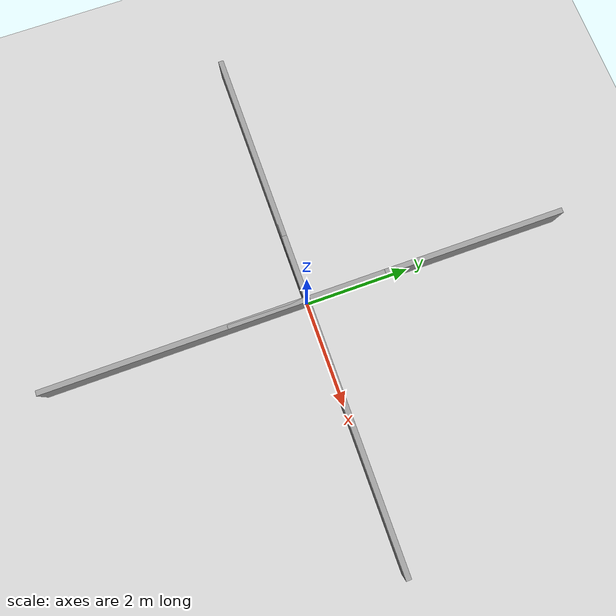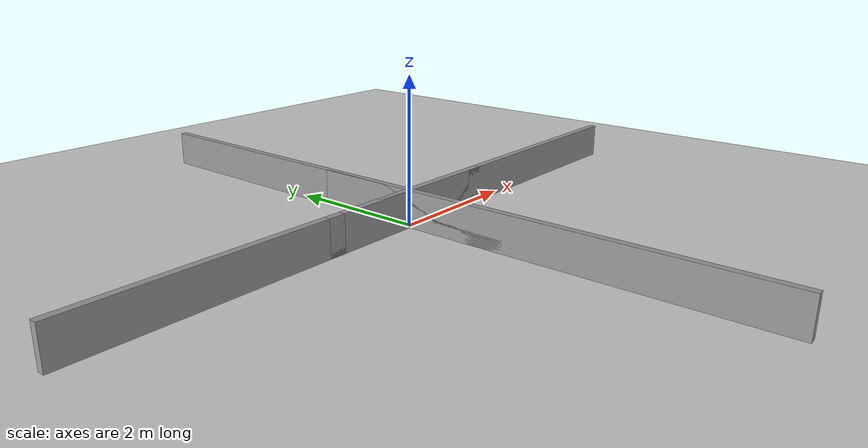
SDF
<sdf version="1.7">
 <world name="default">
  <light name="sun" type="directional">
   <cast_shadows>0</cast_shadows>
   <pose>0 0 10 0 -0 0</pose>
   <diffuse>0.8 0.8 0.8 1</diffuse>
   <specular>0.2 0.2 0.2 1</specular>
   <attenuation>
    <range>1000</range>
    <constant>0.9</constant>
    <linear>0.01</linear>
    <quadratic>0.001</quadratic>
   </attenuation>
   <direction>-0.5 0.1 -0.9</direction>
   <spot><inner_angle>0</inner_angle><outer_angle>0</outer_angle><falloff>0</falloff></spot>
  </light>
  <model name="ground_plane">
   <static>1</static>
   <link name="link">
    <collision name="collision">
     <geometry><plane><normal>0 0 1</normal><size>100 100</size></plane></geometry>
     <surface>
      <contact><collide_bitmask>65535</collide_bitmask></contact>
      <friction><ode><mu>100</mu><mu2>50</mu2></ode></friction>
     </surface>
    </collision>
    <visual name="visual">
     <cast_shadows>0</cast_shadows>
     <geometry><plane><normal>0 0 1</normal><size>100 100</size></plane></geometry>
     <material>
      <script><uri>file://media/materials/scripts/gazebo.material</uri><name>Gazebo/Grey</name></script>
     </material>
    </visual>
   </link>
  </model>
  <gravity>0 0 -9.8</gravity>
  <magnetic_field>6e-06 2.3e-05 -4.2e-05</magnetic_field>
  <atmosphere type="adiabatic"/>
  <physics type="ode">
   <max_step_size>0.001</max_step_size>
   <real_time_factor>1</real_time_factor>
   <real_time_update_rate>250</real_time_update_rate>
  </physics>
  <scene><ambient>0.4 0.4 0.4 1</ambient><background>0.7 0.7 0.7 1</background><shadows>0</shadows></scene>
  <spherical_coordinates>
   <surface_model>EARTH_WGS84</surface_model>
   <latitude_deg>0</latitude_deg>
   <longitude_deg>0</longitude_deg>
   <elevation>0</elevation>
   <heading_deg>0</heading_deg>
  </spherical_coordinates>
  <model name="walls">
   <static>1</static>
   <link name="border_bottom">
    <inertial>
     <mass>1</mass>
     <inertia>
      <ixx>0.166667</ixx>
      <ixy>0</ixy>
      <ixz>0</ixz>
      <iyy>0.166667</iyy>
      <iyz>0</iyz>
      <izz>0.166667</izz>
     </inertia>
     <pose>0 -5 0.5 0 -0 0</pose>
    </inertial>
    <collision name="collision"><geometry><box><size>10 0.1 1</size></box></geometry></collision>
    <visual name="visual">
     <geometry><box><size>10 0.1 1</size></box></geometry>
     <material>
      <script><name>Gazebo/Grey</name><uri>file://media/materials/scripts/gazebo.material</uri></script>
     </material>
    </visual>
   </link>
   <link name="border_left">
    <inertial>
     <mass>1</mass>
     <inertia>
      <ixx>0.166667</ixx>
      <ixy>0</ixy>
      <ixz>0</ixz>
      <iyy>0.166667</iyy>
      <iyz>0</iyz>
      <izz>0.166667</izz>
     </inertia>
     <pose>-5 0 0.5 0 -0 0</pose>
    </inertial>
    <collision name="collision"><geometry><box><size>0.1 10 1</size></box></geometry></collision>
    <visual name="visual">
     <geometry><box><size>0.1 10 1</size></box></geometry>
     <material>
      <script><name>Gazebo/Grey</name><uri>file://media/materials/scripts/gazebo.material</uri></script>
     </material>
    </visual>
   </link>
   <link name="border_right">
    <inertial>
     <mass>1</mass>
     <inertia>
      <ixx>0.166667</ixx>
      <ixy>0</ixy>
      <ixz>0</ixz>
      <iyy>0.166667</iyy>
      <iyz>0</iyz>
      <izz>0.166667</izz>
     </inertia>
     <pose>5 0 0.5 0 -0 0</pose>
    </inertial>
    <collision name="collision"><geometry><box><size>0.1 10 1</size></box></geometry></collision>
    <visual name="visual">
     <geometry><box><size>0.1 10 1</size></box></geometry>
     <material>
      <script><name>Gazebo/Grey</name><uri>file://media/materials/scripts/gazebo.material</uri></script>
     </material>
    </visual>
   </link>
   <link name="border_top">
    <inertial>
     <mass>1</mass>
     <inertia>
      <ixx>0.166667</ixx>
      <ixy>0</ixy>
      <ixz>0</ixz>
      <iyy>0.166667</iyy>
      <iyz>0</iyz>
      <izz>0.166667</izz>
     </inertia>
     <pose>0 5 0.5 0 -0 0</pose>
    </inertial>
    <collision name="collision"><geometry><box><size>10 0.1 1</size></box></geometry></collision>
    <visual name="visual">
     <geometry><box><size>10 0.1 1</size></box></geometry>
     <material>
      <script><name>Gazebo/Grey</name><uri>file://media/materials/scripts/gazebo.material</uri></script>
     </material>
    </visual>
   </link>
   <link name="wall_01">
    <inertial>
     <mass>1</mass>
     <inertia>
      <ixx>0.166667</ixx>
      <ixy>0</ixy>
      <ixz>0</ixz>
      <iyy>0.166667</iyy>
      <iyz>0</iyz>
      <izz>0.166667</izz>
     </inertia>
     <pose>1 3.5 0.5 0 -0 0</pose>
    </inertial>
    <collision name="collision"><geometry><box><size>0.1 3 1</size></box></geometry></collision>
    <visual name="visual">
     <geometry><box><size>0.1 3 1</size></box></geometry>
     <material>
      <script><name>Gazebo/Grey</name><uri>file://media/materials/scripts/gazebo.material</uri></script>
     </material>
    </visual>
   </link>
   <link name="wall_02">
    <inertial>
     <mass>1</mass>
     <inertia>
      <ixx>0.166667</ixx>
      <ixy>0</ixy>
      <ixz>0</ixz>
      <iyy>0.166667</iyy>
      <iyz>0</iyz>
      <izz>0.166667</izz>
     </inertia>
     <pose>3.75 2 0.5 0 -0 0</pose>
    </inertial>
    <collision name="collision"><geometry><box><size>2.5 0.1 1</size></box></geometry></collision>
    <visual name="visual">
     <geometry><box><size>2.5 0.1 1</size></box></geometry>
     <material>
      <script><name>Gazebo/Grey</name><uri>file://media/materials/scripts/gazebo.material</uri></script>
     </material>
    </visual>
   </link>
   <link name="wall_03">
    <inertial>
     <mass>1</mass>
     <inertia>
      <ixx>0.166667</ixx>
      <ixy>0</ixy>
      <ixz>0</ixz>
      <iyy>0.166667</iyy>
      <iyz>0</iyz>
      <izz>0.166667</izz>
     </inertia>
     <pose>0.5 -2 0.5 0 -0 0</pose>
    </inertial>
    <collision name="collision"><geometry><box><size>3 0.1 1</size></box></geometry></collision>
    <visual name="visual">
     <geometry><box><size>3 0.1 1</size></box></geometry>
     <material>
      <script><name>Gazebo/Grey</name><uri>file://media/materials/scripts/gazebo.material</uri></script>
     </material>
    </visual>
   </link>
   <link name="wall_04">
    <inertial>
     <mass>1</mass>
     <inertia>
      <ixx>0.166667</ixx>
      <ixy>0</ixy>
      <ixz>0</ixz>
      <iyy>0.166667</iyy>
      <iyz>0</iyz>
      <izz>0.166667</izz>
     </inertia>
     <pose>-2 1 0.5 0 -0 0</pose>
    </inertial>
    <collision name="collision"><geometry><box><size>4 0.1 1</size></box></geometry></collision>
    <visual name="visual">
     <geometry><box><size>4 0.1 1</size></box></geometry>
     <material>
      <script><name>Gazebo/Grey</name><uri>file://media/materials/scripts/gazebo.material</uri></script>
     </material>
    </visual>
   </link>
   <link name="wall_05">
    <inertial>
     <mass>1</mass>
     <inertia>
      <ixx>0.166667</ixx>
      <ixy>0</ixy>
      <ixz>0</ixz>
      <iyy>0.166667</iyy>
      <iyz>0</iyz>
      <izz>0.166667</izz>
     </inertia>
     <pose>-4 -3.5 0.5 0 -0 0</pose>
    </inertial>
    <collision name="collision"><geometry><box><size>0.1 3 1</size></box></geometry></collision>
    <visual name="visual">
     <geometry><box><size>0.1 3 1</size></box></geometry>
     <material>
      <script><name>Gazebo/Grey</name><uri>file://media/materials/scripts/gazebo.material</uri></script>
     </material>
    </visual>
   </link>
  </model>
 </world>
</sdf>
